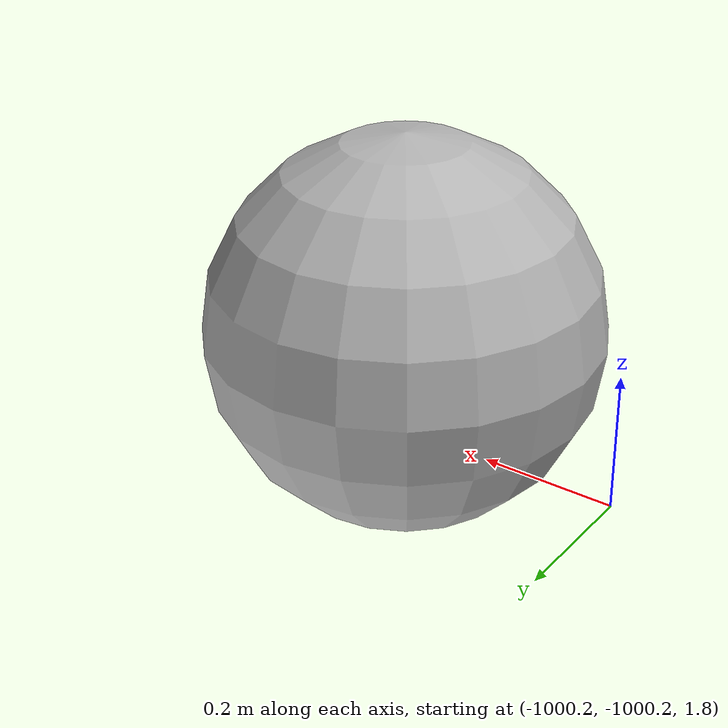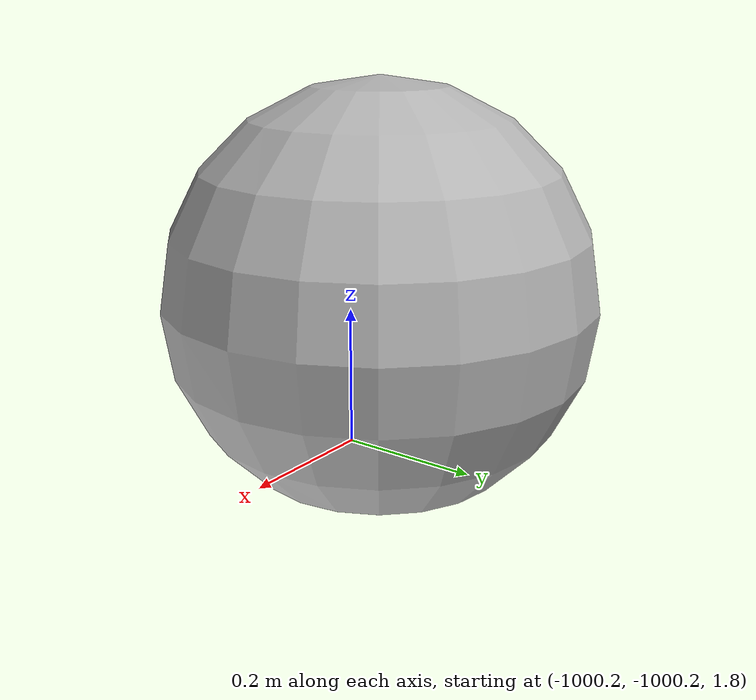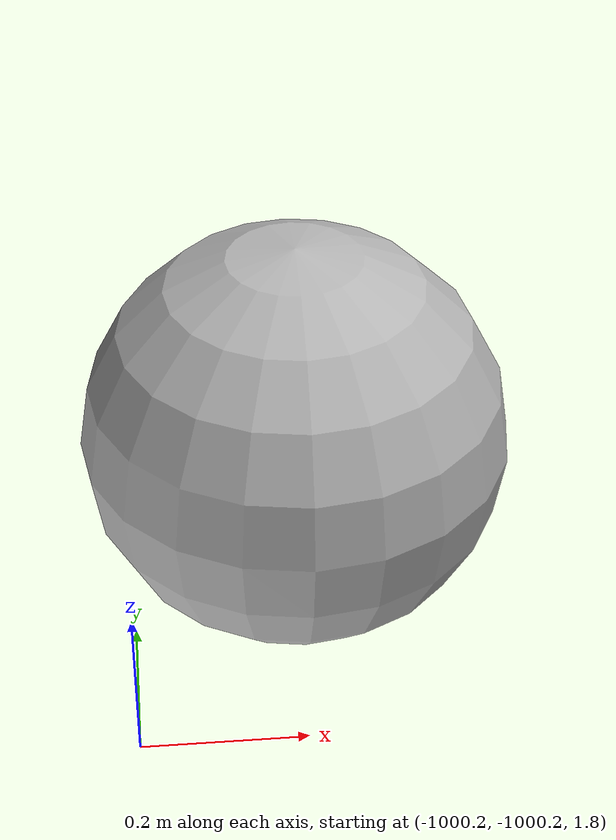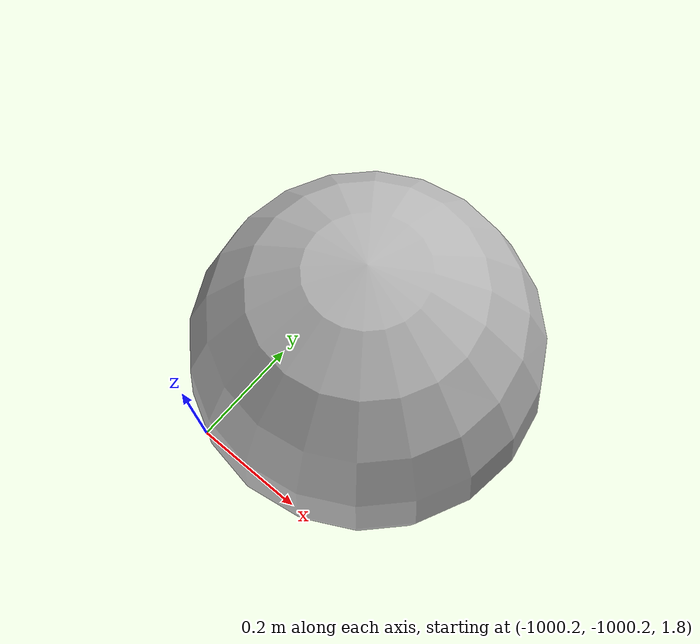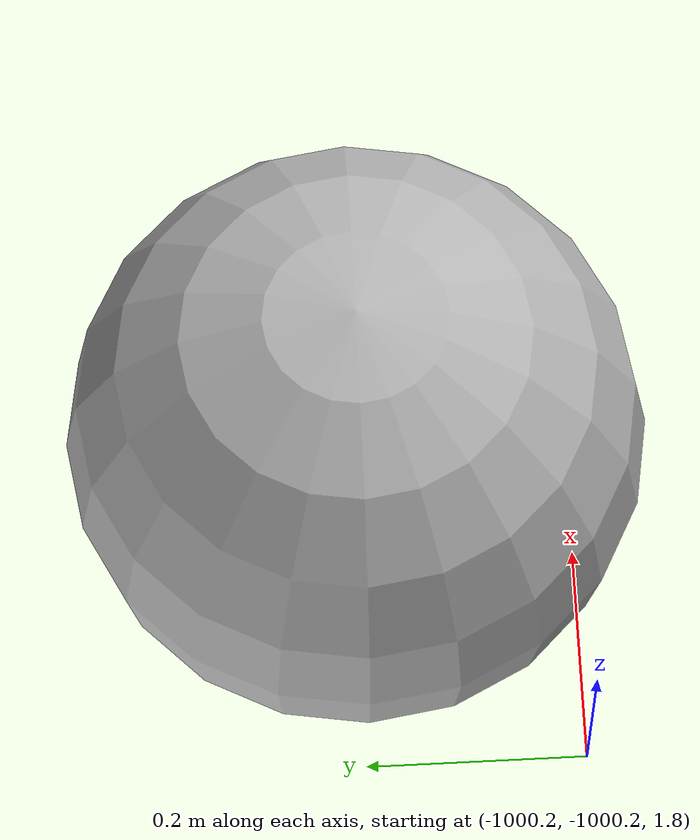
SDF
<?xml version="1.0"?>
<?xml-model href="http://sdformat.org/schemas/root.xsd" schematypens="http://www.w3.org/2001/XMLSchema"?>
<sdf version="1.5">
  <world name="default">
    <plugin name="mrs_gazebo_static_transform_republisher_plugin"
      filename="libMRSGazeboStaticTransformRepublisher.so" />

    <!-- coordinate system {-->
    <spherical_coordinates>
      <surface_model>EARTH_WGS84</surface_model>
      <latitude_deg>37.411802</latitude_deg>
      <longitude_deg>-121.995739</longitude_deg>
      <elevation>0.0</elevation>
      <heading_deg>0</heading_deg>
    </spherical_coordinates>

    <!-- physics engine {-->
    <physics name="default_physics" default="0" type="ode">
      <gravity>0 0 -9.8066</gravity>
      <ode>
        <solver>
          <type>quick</type>
          <iters>10</iters>
          <sor>1.3</sor>
          <use_dynamic_moi_rescaling>0</use_dynamic_moi_rescaling>
        </solver>
        <constraints>z <cfm>0</cfm>
          <erp>0.2</erp>
          <contact_max_correcting_vel>1000</contact_max_correcting_vel>
          <contact_surface_layer>
          0.001</contact_surface_layer>
        </constraints>
      </ode>
      <max_step_size>0.004</max_step_size>
      <real_time_factor>1</real_time_factor>
      <real_time_update_rate>250</real_time_update_rate>
      <magnetic_field>6.0e-06 2.3e-05 -4.2e-05</magnetic_field>
    </physics>

    <!-- turn off shadows {-->
    <scene>
      <shadows>false</shadows>
      <sky>
        <clouds />
      </sky>
    </scene>

    <!-- sun {-->
    <light type="directional" name="sun">
      <cast_shadows>true</cast_shadows>
      <pose>250 250 600 0 0 0</pose>
      <diffuse>0.8 0.8 0.8 1</diffuse>
      <specular>0.2 0.2 0.2 1</specular>
      <attenuation>
        <range>1000</range>
        <constant>0.9</constant>
        <linear>0.01</linear>
        <quadratic>0.001</quadratic>
      </attenuation>
      <direction>0 0 -1</direction>
    </light>

    <!-- ground plane {-->
    <model name="ground_plane">
      <static>true</static>
      <link name="link">
        <collision name="collision">
          <pose>0 0 0 0 0 0</pose>
          <geometry>
            <plane>
              <normal>0 0 1</normal>
              <size>250 250</size>
            </plane>
          </geometry>
          <surface>
            <friction>
              <ode>
                <mu>1</mu>
                <mu2>1</mu2>
              </ode>
            </friction>
          </surface>
        </collision>
        <visual name="grass">
          <pose>0 0 -0.001 -1.57079632679 0 0</pose>
          <cast_shadows>false</cast_shadows>
          <geometry>
            <mesh>
              <uri>model://grass_plane/meshes/grass_plane.obj</uri>
              <scale>0.1 0.1 0.1</scale>
            </mesh>
          </geometry>
        </visual>
      </link>
    </model>

    <!-- THE VOID (for spawning objects out of camera view) {-->
    <model name='the_void'>
      <static>1</static>
      <link name='link'>
        <pose frame=''>0 0 0.1 0 -0 0</pose>
        <visual name='the_void'>
          <pose frame=''>0 0 2 0 -0 0</pose>
          <geometry>
            <sphere>
              <radius>0.25</radius>
            </sphere>
          </geometry>
          <material>
          </material>
        </visual>
        <self_collide>0</self_collide>
        <enable_wind>0</enable_wind>
        <kinematic>0</kinematic>
      </link>
      <pose frame=''>-1000 -1000 0 0 0 0</pose>
    </model>

    <!-- user camera {-->
    <gui>
      <camera name="camera">
        <pose>-5 0 5 0 0.78 0</pose>
      </camera>
    </gui>

    <!-- GUI frame synchronization {-->
    <plugin name="mrs_gazebo_rviz_cam_synchronizer" filename="libMRSGazeboRvizCameraSynchronizer.so">
      <target_frame_id>gazebo_user_camera</target_frame_id>
      <world_origin_frame_id>uav1/gps_origin</world_origin_frame_id>
      <frame_to_follow>uav1::base_link</frame_to_follow>
    </plugin>

  </world>
</sdf>
